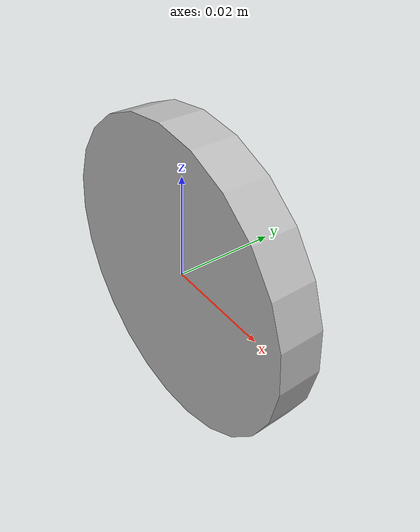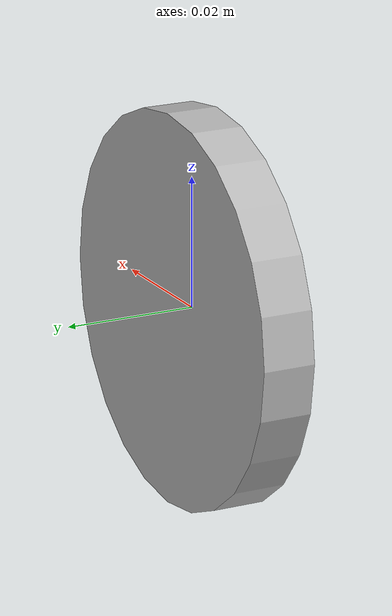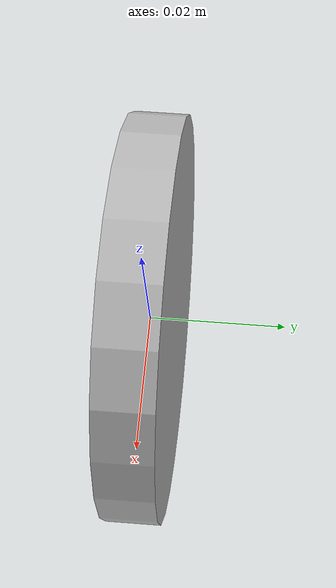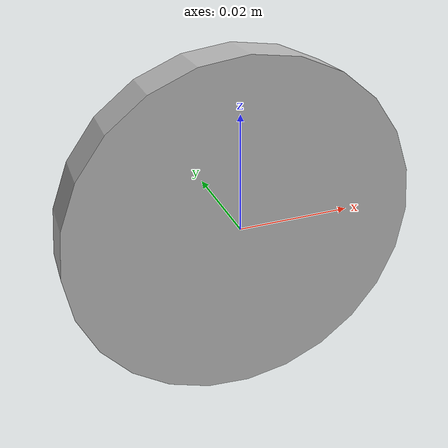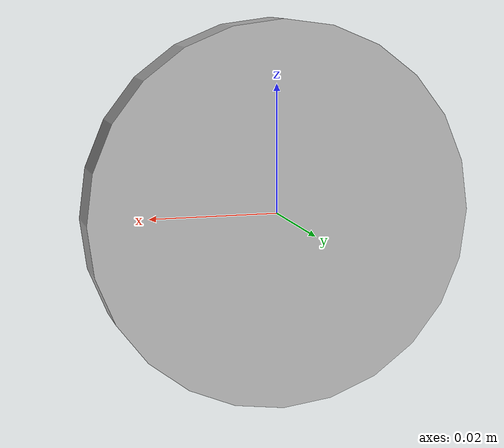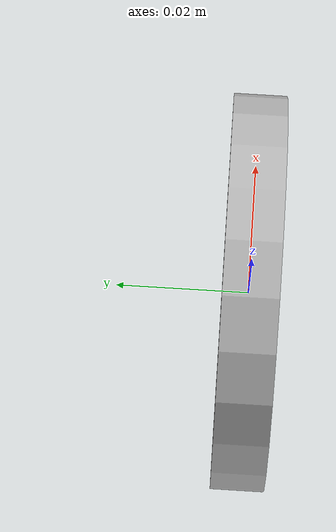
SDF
<sdf version='1.6'>
  <model name='prsg2_robot'>
    <link name='left_wheel_link'>
      <pose frame=''>0 0 0 0 -0 0</pose>
      <inertial>
        <pose frame=''>0 0 0 1.5708 -0 0</pose>
        <mass>1</mass>
        <inertia>
          <ixx>100</ixx>
          <ixy>0</ixy>
          <ixz>0</ixz>
          <iyy>100</iyy>
          <iyz>0</iyz>
          <izz>100</izz>
        </inertia>
      </inertial>
      <collision name='left_wheel_link_collision'>
        <pose frame=''>0 0 0 1.5708 -0 0</pose>
        <geometry>
          <cylinder>
            <length>0.008</length>
            <radius>0.03</radius>
          </cylinder>
        </geometry>
      </collision>
      <visual name='left_wheel_link_visual'>
        <pose frame=''>0 0 0 1.5708 -0 0</pose>
        <geometry>
          <cylinder>
            <length>0.008</length>
            <radius>0.03</radius>
          </cylinder>
        </geometry>
      </visual>
    </link>
  </model>
</sdf>
